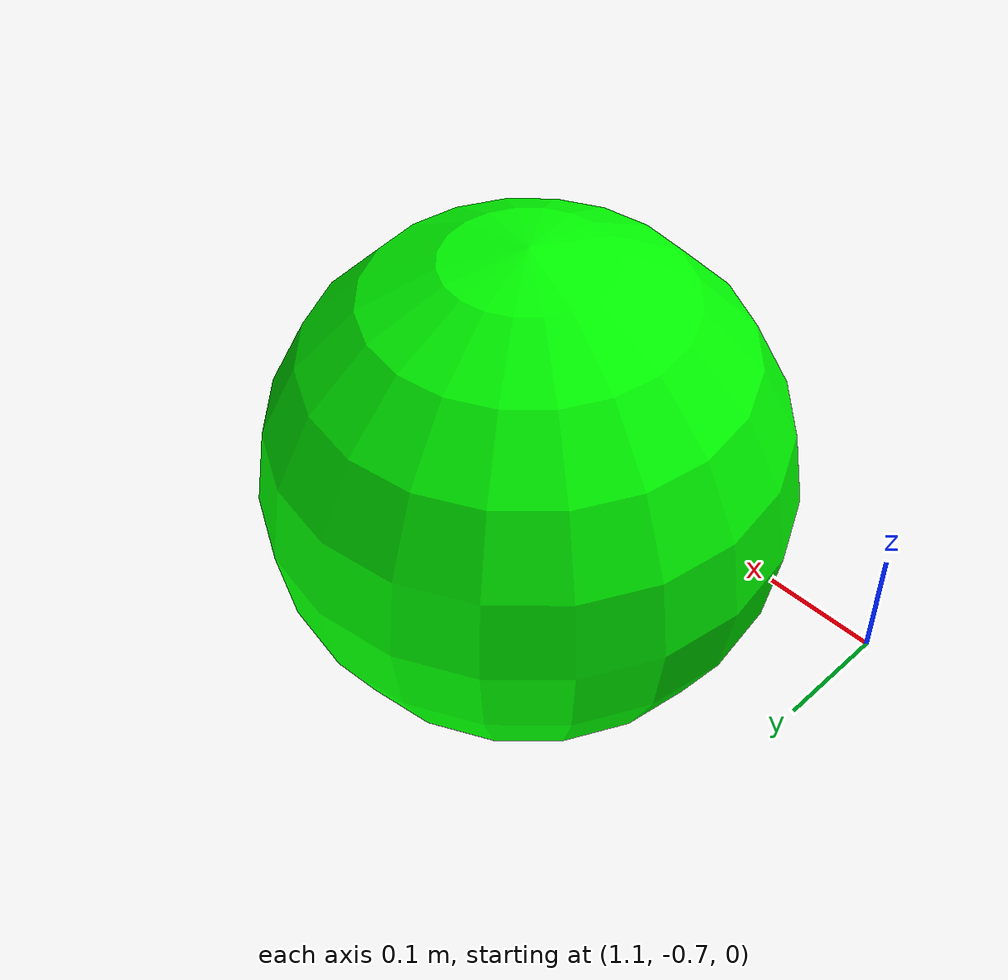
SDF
<?xml version="1.0" ?>
<sdf version="1.6">
  <model name="green_sphere">
    <static>true</static>
    <link name="link">
      <visual name="visual">
        <geometry>
          <sphere><radius>0.2</radius></sphere>
        </geometry>
        <material>
          <ambient>0 1 0 1</ambient>
          <diffuse>0 1 0 1</diffuse>
        </material>
      </visual>
      <collision name="collision">
        <geometry>
          <sphere><radius>0.2</radius></sphere>
        </geometry>
      </collision>
    </link>
    <pose>1.3 -0.5 0.2 0 0 0</pose>
  </model>
</sdf>
